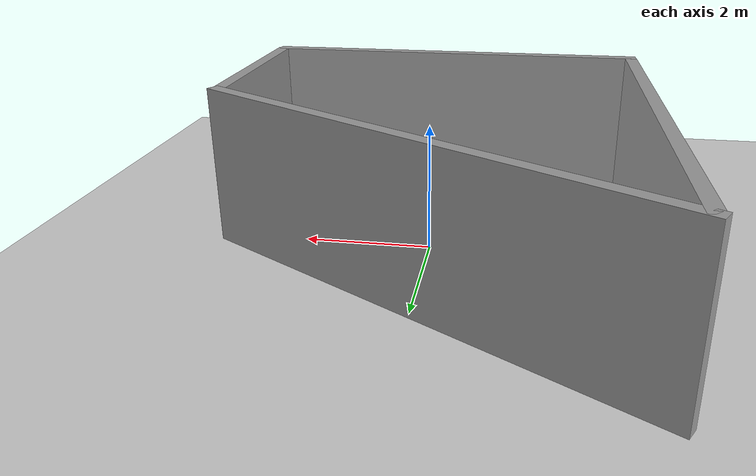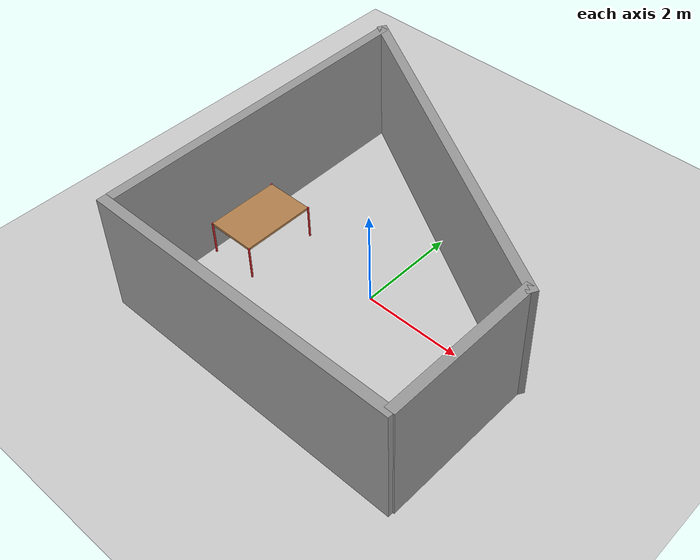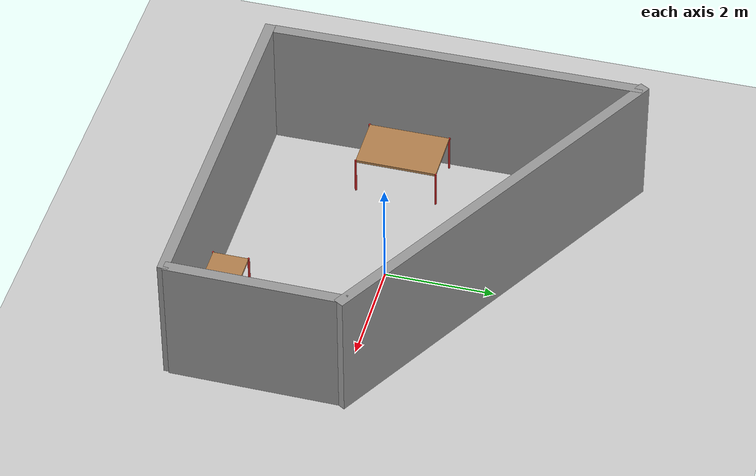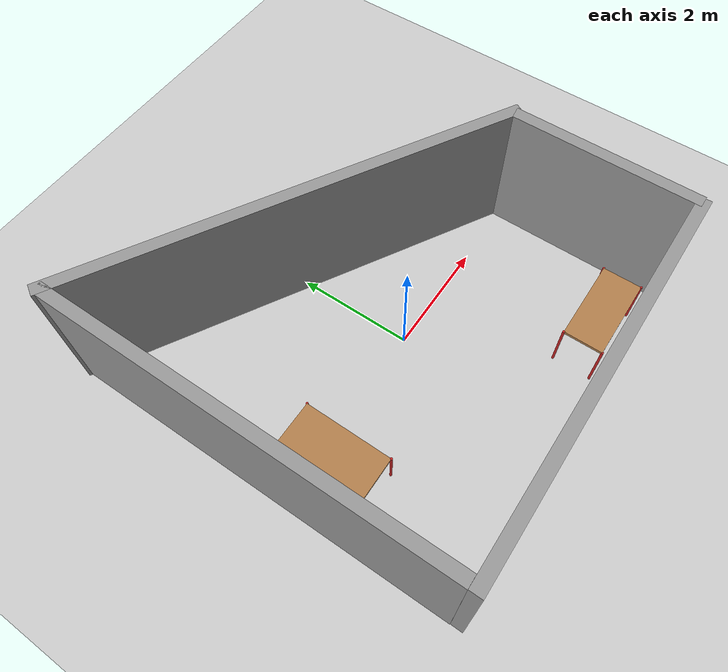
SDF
<?xml version="1.0" ?>
<sdf version='1.4'>
  <world name='single_room_world'>
    <light name='sun_test' type='directional'>
      <cast_shadows>1</cast_shadows>
      <pose>0 0 10 0.2 0.8 10</pose>
      <diffuse>0.8 0.8 0.8 1</diffuse>
      <specular>0.2 0.2 0.2 1</specular>
      <attenuation>
        <range>1000</range>
        <constant>0.9</constant>
        <linear>0.01</linear>
        <quadratic>0.001</quadratic>
      </attenuation>
      <direction>-0.05 -0.0 -0.7</direction>
    </light>
    <model name='ground_plane'>
      <static>1</static>
      <link name='link'>
        <collision name='collision'>
          <geometry>
            <plane>
              <normal>0 0 1</normal>
              <size>100 100</size>
            </plane>
          </geometry>
          <surface>
            <friction>
              <ode>
                <mu>100</mu>
                <mu2>50</mu2>
              </ode>
            </friction>
            <bounce/>
            <contact>
              <ode/>
            </contact>
          </surface>
          <max_contacts>10</max_contacts>
        </collision>
        <visual name='visual'>
          <cast_shadows>0</cast_shadows>
          <geometry>
            <plane>
              <normal>0 0 1</normal>
              <size>100 100</size>
            </plane>
          </geometry>
          <material>
            <script>
              <uri>file://media/materials/scripts/gazebo.material</uri>
              <name>Gazebo/Grey</name>
            </script>
          </material>
        </visual>
        <velocity_decay>
          <linear>0</linear>
          <angular>0</angular>
        </velocity_decay>
        <self_collide>0</self_collide>
        <kinematic>0</kinematic>
        <gravity>1</gravity>
      </link>
    </model>
    <physics type='ode'>
      <max_step_size>0.001</max_step_size>
      <real_time_factor>1</real_time_factor>
      <real_time_update_rate>1000</real_time_update_rate>
      <gravity>0 0 -9.8</gravity>
    </physics>
    <scene>
      <ambient>0.4 0.4 0.4 1</ambient>
      <background>0.7 0.7 0.7 1</background>
      <shadows>1</shadows>
    </scene>
    <model name='map'>
      <link name='Wall_14'>
        <collision name='Wall_14_Collision'>
          <geometry>
            <box>
              <size>6.79758 0.2 2.5</size>
            </box>
          </geometry>
          <pose>0 0 1.25 0 -0 0</pose>
          <max_contacts>10</max_contacts>
          <surface>
            <bounce/>
            <friction>
              <ode/>
            </friction>
            <contact>
              <ode/>
            </contact>
          </surface>
        </collision>
        <visual name='Wall_14_Visual'>
          <pose>0 0 1.25 0 -0 0</pose>
          <geometry>
            <box>
              <size>6.79758 0.2 2.5</size>
            </box>
          </geometry>
          <material>
            <script>
              <uri>file://media/materials/scripts/gazebo.material</uri>
              <name>Gazebo/Grey</name>
            </script>
          </material>
        </visual>
        <velocity_decay>
          <linear>0</linear>
          <angular>0</angular>
        </velocity_decay>
        <pose>-3.2 0.5 0 0 -0 1.57912</pose>
        <self_collide>0</self_collide>
        <kinematic>0</kinematic>
        <gravity>1</gravity>
      </link>
      <link name='Wall_15'>
        <collision name='Wall_15_Collision'>
          <geometry>
            <box>
              <size>7.66901 0.2 2.5</size>
            </box>
          </geometry>
          <pose>0 0 1.25 0 -0 0</pose>
          <max_contacts>10</max_contacts>
          <surface>
            <bounce/>
            <friction>
              <ode/>
            </friction>
            <contact>
              <ode/>
            </contact>
          </surface>
        </collision>
        <visual name='Wall_15_Visual'>
          <pose>0 0 1.25 0 -0 0</pose>
          <geometry>
            <box>
              <size>7.66901 0.2 2.5</size>
            </box>
          </geometry>
          <material>
            <script>
              <uri>file://media/materials/scripts/gazebo.material</uri>
              <name>Gazebo/Grey</name>
            </script>
          </material>
        </visual>
        <velocity_decay>
          <linear>0</linear>
          <angular>0</angular>
        </velocity_decay>
        <pose>0 2 0 0 -0 -0.523599</pose>
        <self_collide>0</self_collide>
        <kinematic>0</kinematic>
        <gravity>1</gravity>
      </link>
      <link name='Wall_16'>
        <collision name='Wall_16_Collision'>
          <geometry>
            <box>
              <size>3.2 0.2 2.5</size>
            </box>
          </geometry>
          <pose>0 0 1.25 0 -0 0</pose>
          <max_contacts>10</max_contacts>
          <surface>
            <bounce/>
            <friction>
              <ode/>
            </friction>
            <contact>
              <ode/>
            </contact>
          </surface>
        </collision>
        <visual name='Wall_16_Visual'>
          <pose>0 0 1.25 0 -0 0</pose>
          <geometry>
            <box>
              <size>3.2 0.2 2.5</size>
            </box>
          </geometry>
          <material>
            <script>
              <uri>file://media/materials/scripts/gazebo.material</uri>
              <name>Gazebo/Grey</name>
            </script>
          </material>
        </visual>
        <velocity_decay>
          <linear>0</linear>
          <angular>0</angular>
        </velocity_decay>
        <pose>3.2 -1.4 0 0 0 -1.57411</pose>
        <self_collide>0</self_collide>
        <kinematic>0</kinematic>
        <gravity>1</gravity>
      </link>
      <link name='Wall_17'>
        <collision name='Wall_17_Collision'>
          <geometry>
            <box>
              <size>6.53169 0.2 2.5</size>
            </box>
          </geometry>
          <pose>0 0 1.25 0 -0 0</pose>
          <max_contacts>10</max_contacts>
          <surface>
            <bounce/>
            <friction>
              <ode/>
            </friction>
            <contact>
              <ode/>
            </contact>
          </surface>
        </collision>
        <visual name='Wall_17_Visual'>
          <pose>0 0 1.25 0 -0 0</pose>
          <geometry>
            <box>
              <size>6.53169 0.2 2.5</size>
            </box>
          </geometry>
          <material>
            <script>
              <uri>file://media/materials/scripts/gazebo.material</uri>
              <name>Gazebo/Grey</name>
            </script>
          </material>
        </visual>
        <velocity_decay>
          <linear>0</linear>
          <angular>0</angular>
        </velocity_decay>
        <pose>0 -3 0 0 -0 3.14159</pose>
        <self_collide>0</self_collide>
        <kinematic>0</kinematic>
        <gravity>1</gravity>
      </link>
      <static>1</static>
      <pose>0 0 0 0 -0 0</pose>
    </model>
    <model name='table1'>
      <link name='table_top_link'>
        <pose>0 0 0 0 -0 0</pose>
        <inertial>
          <pose>0 0 0.535 0 -0 0</pose>
          <mass>5</mass>
          <inertia>
            <ixx>1.967</ixx>
            <ixy>0</ixy>
            <ixz>0</ixz>
            <iyy>3.5045</iyy>
            <iyz>0</iyz>
            <izz>3.4225</izz>
          </inertia>
        </inertial>
        <collision name='table_top_link_collision'>
          <pose>0 0 0.875 0 -0 0</pose>
          <geometry>
            <box>
              <size>1.4 0.65 0.05</size>
            </box>
          </geometry>
          <surface>
            <contact>
              <ode>
                <kp>1e+06</kp>
                <kd>1</kd>
              </ode>
            </contact>
            <friction>
              <ode>
                <mu>50</mu>
                <mu2>50</mu2>
              </ode>
            </friction>
            <bounce/>
          </surface>
          <max_contacts>10</max_contacts>
        </collision>
        <collision name='table_top_link_collision_leg1_link'>
          <pose>0.7 0.325 0.45 0 -0 0</pose>
          <geometry>
            <cylinder>
              <length>0.9</length>
              <radius>0.02</radius>
            </cylinder>
          </geometry>
          <surface>
            <contact>
              <ode>
                <kp>1e+06</kp>
                <kd>1</kd>
              </ode>
            </contact>
            <friction>
              <ode>
                <mu>50</mu>
                <mu2>50</mu2>
              </ode>
            </friction>
            <bounce/>
          </surface>
          <surface>
            <contact>
              <ode>
                <kp>1e+07</kp>
                <kd>1</kd>
              </ode>
            </contact>
            <friction>
              <ode>
                <mu>1000</mu>
                <mu2>1000</mu2>
              </ode>
            </friction>
          </surface>
          <max_contacts>10</max_contacts>
        </collision>
        <collision name='table_top_link_collision_leg2_link'>
          <pose>-0.7 0.325 0.45 0 -0 0</pose>
          <geometry>
            <cylinder>
              <length>0.9</length>
              <radius>0.02</radius>
            </cylinder>
          </geometry>
          <surface>
            <contact>
              <ode>
                <kp>1e+06</kp>
                <kd>1</kd>
              </ode>
            </contact>
            <friction>
              <ode>
                <mu>50</mu>
                <mu2>50</mu2>
              </ode>
            </friction>
            <bounce/>
          </surface>
          <surface>
            <contact>
              <ode>
                <kp>1e+07</kp>
                <kd>1</kd>
              </ode>
            </contact>
            <friction>
              <ode>
                <mu>1000</mu>
                <mu2>1000</mu2>
              </ode>
            </friction>
          </surface>
          <max_contacts>10</max_contacts>
        </collision>
        <collision name='table_top_link_collision_leg3_link'>
          <pose>0.7 -0.325 0.45 0 -0 0</pose>
          <geometry>
            <cylinder>
              <length>0.9</length>
              <radius>0.02</radius>
            </cylinder>
          </geometry>
          <surface>
            <contact>
              <ode>
                <kp>1e+06</kp>
                <kd>1</kd>
              </ode>
            </contact>
            <friction>
              <ode>
                <mu>50</mu>
                <mu2>50</mu2>
              </ode>
            </friction>
            <bounce/>
          </surface>
          <surface>
            <contact>
              <ode>
                <kp>1e+07</kp>
                <kd>1</kd>
              </ode>
            </contact>
            <friction>
              <ode>
                <mu>1000</mu>
                <mu2>1000</mu2>
              </ode>
            </friction>
          </surface>
          <max_contacts>10</max_contacts>
        </collision>
        <collision name='table_top_link_collision_leg4_link'>
          <pose>-0.7 -0.325 0.45 0 -0 0</pose>
          <geometry>
            <cylinder>
              <length>0.9</length>
              <radius>0.02</radius>
            </cylinder>
          </geometry>
          <surface>
            <contact>
              <ode>
                <kp>1e+06</kp>
                <kd>1</kd>
              </ode>
            </contact>
            <friction>
              <ode>
                <mu>50</mu>
                <mu2>50</mu2>
              </ode>
            </friction>
            <bounce/>
          </surface>
          <surface>
            <contact>
              <ode>
                <kp>1e+07</kp>
                <kd>1</kd>
              </ode>
            </contact>
            <friction>
              <ode>
                <mu>1000</mu>
                <mu2>1000</mu2>
              </ode>
            </friction>
          </surface>
          <max_contacts>10</max_contacts>
        </collision>
        <visual name='table_top_link_visual'>
          <pose>0 0 0.875 0 -0 0</pose>
          <geometry>
            <box>
              <size>1.4 0.65 0.05</size>
            </box>
          </geometry>
          <material>
            <script>
              <name>Gazebo/Wood</name>
              <uri>__default__</uri>
            </script>
          </material>
        </visual>
        <visual name='table_top_link_visual_leg1_link'>
          <pose>0.7 0.325 0.45 0 -0 0</pose>
          <geometry>
            <cylinder>
              <length>0.9</length>
              <radius>0.02</radius>
            </cylinder>
          </geometry>
          <material>
            <script>
              <name>Gazebo/Red</name>
              <uri>__default__</uri>
            </script>
          </material>
        </visual>
        <visual name='table_top_link_visual_leg2_link'>
          <pose>-0.7 0.325 0.45 0 -0 0</pose>
          <geometry>
            <cylinder>
              <length>0.9</length>
              <radius>0.02</radius>
            </cylinder>
          </geometry>
          <material>
            <script>
              <name>Gazebo/Red</name>
              <uri>__default__</uri>
            </script>
          </material>
        </visual>
        <visual name='table_top_link_visual_leg3_link'>
          <pose>0.7 -0.325 0.45 0 -0 0</pose>
          <geometry>
            <cylinder>
              <length>0.9</length>
              <radius>0.02</radius>
            </cylinder>
          </geometry>
          <material>
            <script>
              <name>Gazebo/Red</name>
              <uri>__default__</uri>
            </script>
          </material>
        </visual>
        <visual name='table_top_link_visual_leg4_link'>
          <pose>-0.7 -0.325 0.45 0 -0 0</pose>
          <geometry>
            <cylinder>
              <length>0.9</length>
              <radius>0.02</radius>
            </cylinder>
          </geometry>
          <material>
            <script>
              <name>Gazebo/Red</name>
              <uri>__default__</uri>
            </script>
          </material>
        </visual>
        <velocity_decay>
          <linear>0</linear>
          <angular>0</angular>
        </velocity_decay>
        <velocity_decay>
          <linear>0</linear>
          <angular>0</angular>
        </velocity_decay>
        <velocity_decay>
          <linear>0</linear>
          <angular>0</angular>
        </velocity_decay>
        <velocity_decay>
          <linear>0</linear>
          <angular>0</angular>
        </velocity_decay>
        <gravity>1</gravity>
        <velocity_decay>
          <linear>0</linear>
          <angular>0</angular>
        </velocity_decay>
        <self_collide>1</self_collide>
        <kinematic>0</kinematic>
      </link>
      <static>1</static>
      <pose>1.81 -2.5 0 0 -0 0</pose>
    </model>
    <model name='table2'>
      <link name='table_top_link'>
        <pose>0 0 0 0 -0 0</pose>
        <inertial>
          <pose>0 0 0.433 0 -0 0</pose>
          <mass>5</mass>
          <inertia>
            <ixx>3.74248</ixx>
            <ixy>0</ixy>
            <ixz>0</ixz>
            <iyy>2.49248</iyy>
            <iyz>0</iyz>
            <izz>4.29</izz>
          </inertia>
        </inertial>
        <collision name='table_top_link_collision'>
          <pose>0 0 0.705 0 -0 0</pose>
          <geometry>
            <box>
              <size>1 1.5 0.05</size>
            </box>
          </geometry>
          <surface>
            <contact>
              <ode>
                <kp>1e+06</kp>
                <kd>1</kd>
              </ode>
            </contact>
            <friction>
              <ode>
                <mu>50</mu>
                <mu2>50</mu2>
              </ode>
            </friction>
            <bounce/>
          </surface>
          <max_contacts>10</max_contacts>
        </collision>
        <collision name='table_top_link_collision_leg1_link'>
          <pose>0.5 0.75 0.365 0 -0 0</pose>
          <geometry>
            <cylinder>
              <length>0.73</length>
              <radius>0.02</radius>
            </cylinder>
          </geometry>
          <surface>
            <contact>
              <ode>
                <kp>1e+06</kp>
                <kd>1</kd>
              </ode>
            </contact>
            <friction>
              <ode>
                <mu>50</mu>
                <mu2>50</mu2>
              </ode>
            </friction>
            <bounce/>
          </surface>
          <surface>
            <contact>
              <ode>
                <kp>1e+07</kp>
                <kd>1</kd>
              </ode>
            </contact>
            <friction>
              <ode>
                <mu>1000</mu>
                <mu2>1000</mu2>
              </ode>
            </friction>
          </surface>
          <max_contacts>10</max_contacts>
        </collision>
        <collision name='table_top_link_collision_leg2_link'>
          <pose>-0.5 0.75 0.365 0 -0 0</pose>
          <geometry>
            <cylinder>
              <length>0.73</length>
              <radius>0.02</radius>
            </cylinder>
          </geometry>
          <surface>
            <contact>
              <ode>
                <kp>1e+06</kp>
                <kd>1</kd>
              </ode>
            </contact>
            <friction>
              <ode>
                <mu>50</mu>
                <mu2>50</mu2>
              </ode>
            </friction>
            <bounce/>
          </surface>
          <surface>
            <contact>
              <ode>
                <kp>1e+07</kp>
                <kd>1</kd>
              </ode>
            </contact>
            <friction>
              <ode>
                <mu>1000</mu>
                <mu2>1000</mu2>
              </ode>
            </friction>
          </surface>
          <max_contacts>10</max_contacts>
        </collision>
        <collision name='table_top_link_collision_leg3_link'>
          <pose>0.5 -0.75 0.365 0 -0 0</pose>
          <geometry>
            <cylinder>
              <length>0.73</length>
              <radius>0.02</radius>
            </cylinder>
          </geometry>
          <surface>
            <contact>
              <ode>
                <kp>1e+06</kp>
                <kd>1</kd>
              </ode>
            </contact>
            <friction>
              <ode>
                <mu>50</mu>
                <mu2>50</mu2>
              </ode>
            </friction>
            <bounce/>
          </surface>
          <surface>
            <contact>
              <ode>
                <kp>1e+07</kp>
                <kd>1</kd>
              </ode>
            </contact>
            <friction>
              <ode>
                <mu>1000</mu>
                <mu2>1000</mu2>
              </ode>
            </friction>
          </surface>
          <max_contacts>10</max_contacts>
        </collision>
        <collision name='table_top_link_collision_leg4_link'>
          <pose>-0.5 -0.75 0.365 0 -0 0</pose>
          <geometry>
            <cylinder>
              <length>0.73</length>
              <radius>0.02</radius>
            </cylinder>
          </geometry>
          <surface>
            <contact>
              <ode>
                <kp>1e+06</kp>
                <kd>1</kd>
              </ode>
            </contact>
            <friction>
              <ode>
                <mu>50</mu>
                <mu2>50</mu2>
              </ode>
            </friction>
            <bounce/>
          </surface>
          <surface>
            <contact>
              <ode>
                <kp>1e+07</kp>
                <kd>1</kd>
              </ode>
            </contact>
            <friction>
              <ode>
                <mu>1000</mu>
                <mu2>1000</mu2>
              </ode>
            </friction>
          </surface>
          <max_contacts>10</max_contacts>
        </collision>
        <visual name='table_top_link_visual'>
          <pose>0 0 0.705 0 -0 0</pose>
          <geometry>
            <box>
              <size>1 1.5 0.05</size>
            </box>
          </geometry>
          <material>
            <script>
              <name>Gazebo/Wood</name>
              <uri>__default__</uri>
            </script>
          </material>
        </visual>
        <visual name='table_top_link_visual_leg1_link'>
          <pose>0.5 0.75 0.365 0 -0 0</pose>
          <geometry>
            <cylinder>
              <length>0.73</length>
              <radius>0.02</radius>
            </cylinder>
          </geometry>
          <material>
            <script>
              <name>Gazebo/Red</name>
              <uri>__default__</uri>
            </script>
          </material>
        </visual>
        <visual name='table_top_link_visual_leg2_link'>
          <pose>-0.5 0.75 0.365 0 -0 0</pose>
          <geometry>
            <cylinder>
              <length>0.73</length>
              <radius>0.02</radius>
            </cylinder>
          </geometry>
          <material>
            <script>
              <name>Gazebo/Red</name>
              <uri>__default__</uri>
            </script>
          </material>
        </visual>
        <visual name='table_top_link_visual_leg3_link'>
          <pose>0.5 -0.75 0.365 0 -0 0</pose>
          <geometry>
            <cylinder>
              <length>0.73</length>
              <radius>0.02</radius>
            </cylinder>
          </geometry>
          <material>
            <script>
              <name>Gazebo/Red</name>
              <uri>__default__</uri>
            </script>
          </material>
        </visual>
        <visual name='table_top_link_visual_leg4_link'>
          <pose>-0.5 -0.75 0.365 0 -0 0</pose>
          <geometry>
            <cylinder>
              <length>0.73</length>
              <radius>0.02</radius>
            </cylinder>
          </geometry>
          <material>
            <script>
              <name>Gazebo/Red</name>
              <uri>__default__</uri>
            </script>
          </material>
        </visual>
        <velocity_decay>
          <linear>0</linear>
          <angular>0</angular>
        </velocity_decay>
        <velocity_decay>
          <linear>0</linear>
          <angular>0</angular>
        </velocity_decay>
        <velocity_decay>
          <linear>0</linear>
          <angular>0</angular>
        </velocity_decay>
        <velocity_decay>
          <linear>0</linear>
          <angular>0</angular>
        </velocity_decay>
        <gravity>1</gravity>
        <velocity_decay>
          <linear>0</linear>
          <angular>0</angular>
        </velocity_decay>
        <self_collide>1</self_collide>
        <kinematic>0</kinematic>
      </link>
      <static>1</static>
      <pose>-2.5 -0.33 0 0 -0 0</pose>
    </model>
    <gui fullscreen='0'>
      <camera name='user_camera'>
        <pose>0.5142 4.5 10.40551 0 1.0472 -1.60299</pose>
        <view_controller>orbit</view_controller>
      </camera>
    </gui>
  </world>
</sdf>
